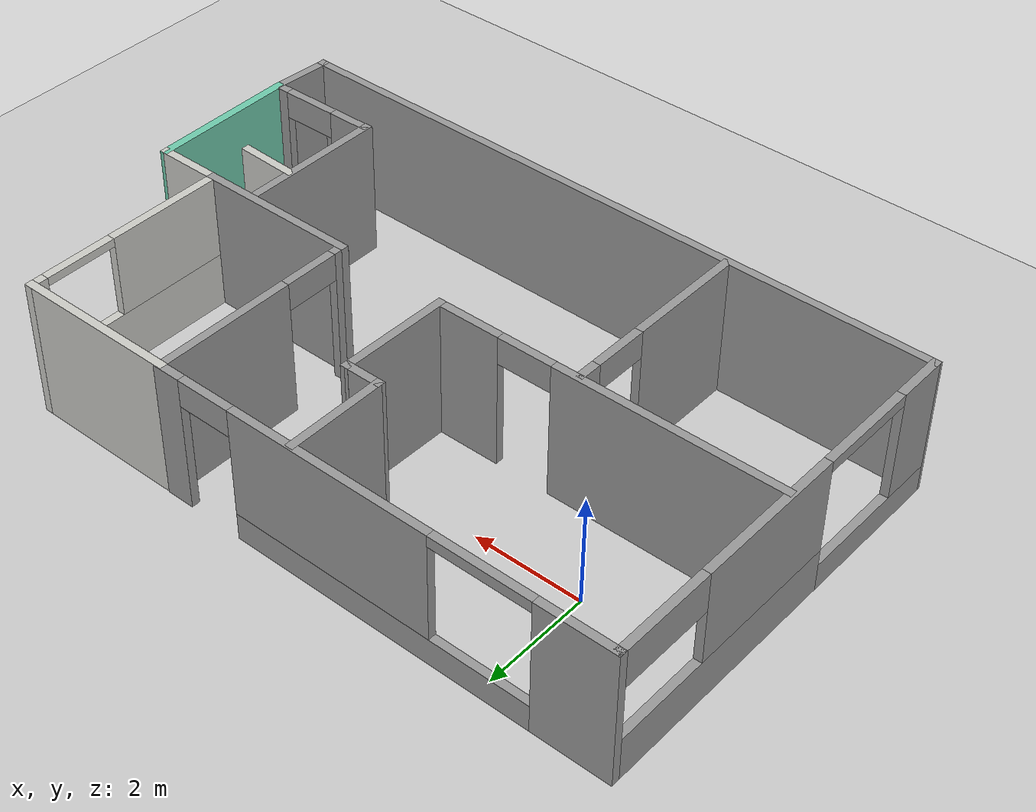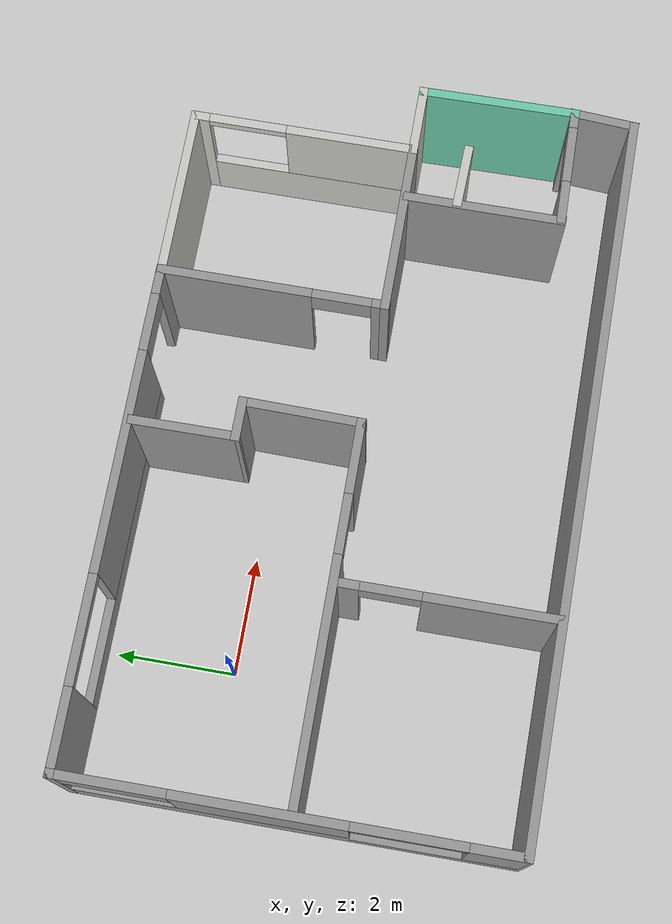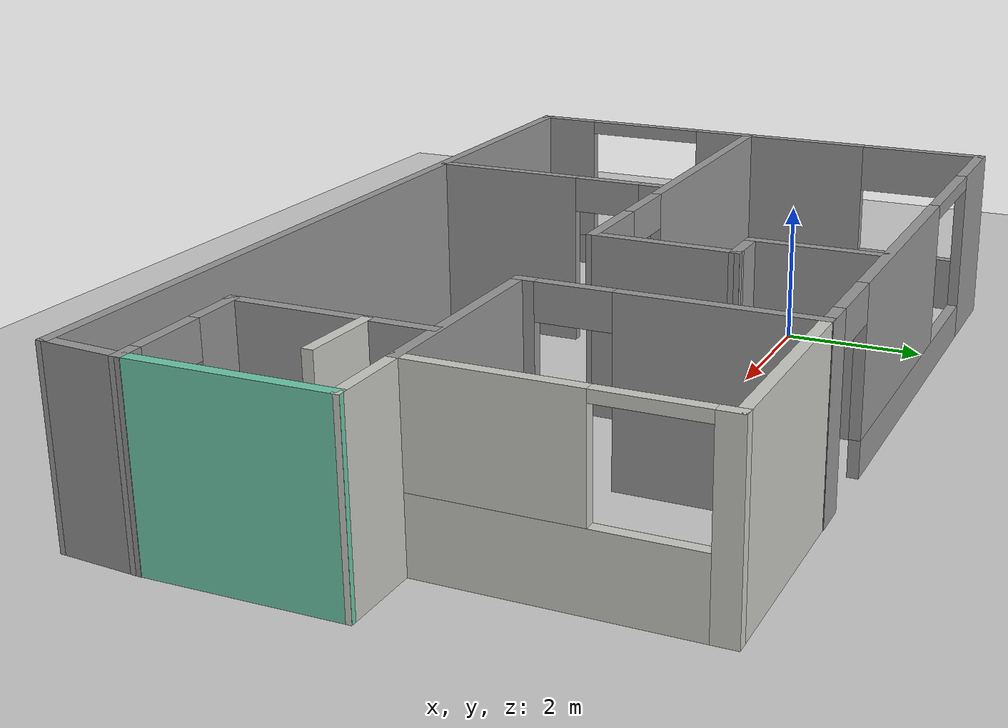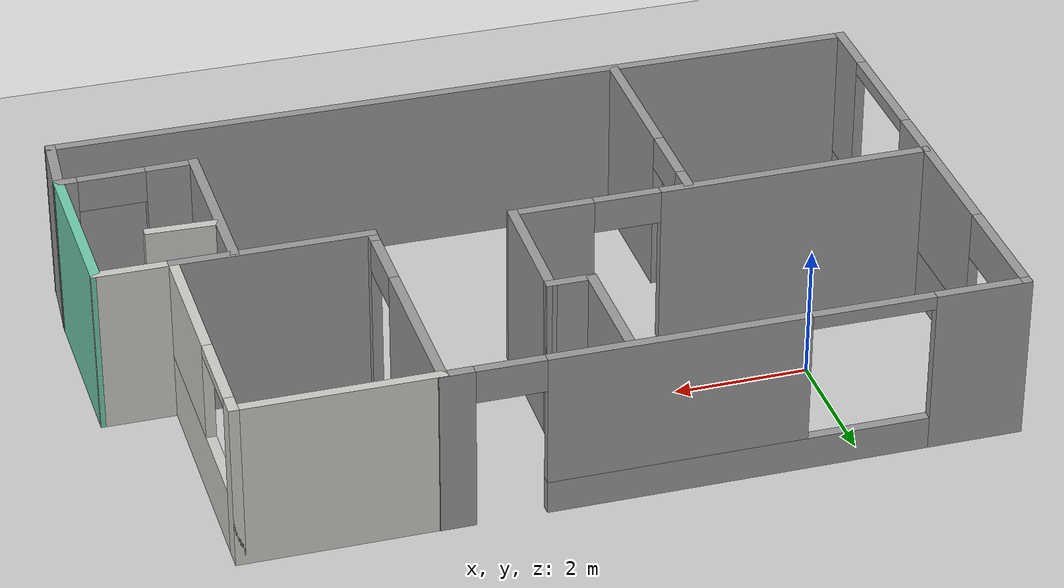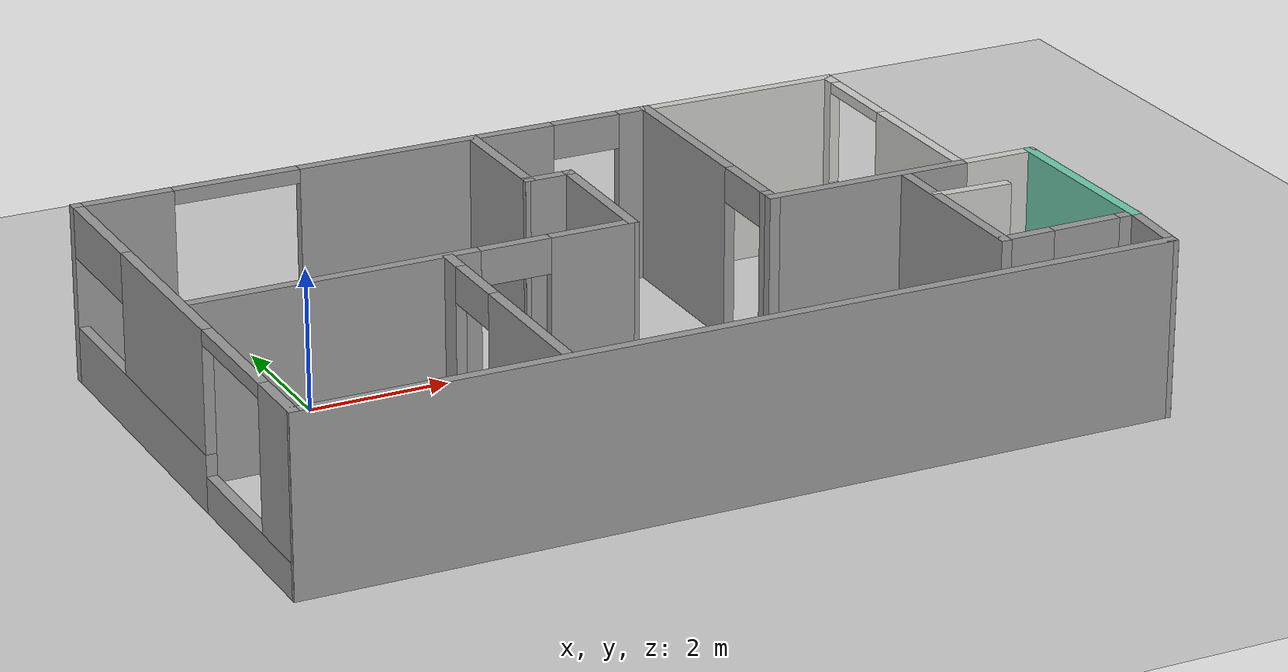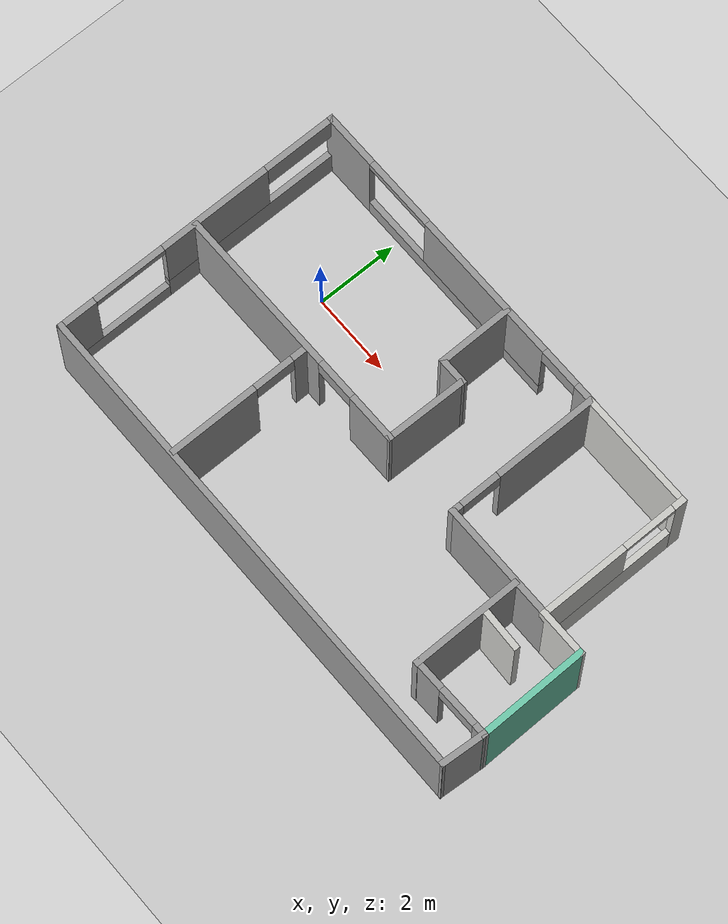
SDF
<sdf version="1.6">
 <world name="default">
  <light name="sun" type="directional">
   <pose>0 0 10 0 -0 0</pose>
   <diffuse>0.8 0.8 0.8 1</diffuse>
   <specular>0.2 0.2 0.2 1</specular>
   <attenuation>
    <range>1000</range>
    <constant>0.9</constant>
    <linear>0.01</linear>
    <quadratic>0.001</quadratic>
   </attenuation>
   <direction>-0.5 0.1 -0.9</direction>
  </light>
  <model name="ground_plane">
   <static>1</static>
   <link name="link">
    <collision name="collision">
     <geometry><plane><normal>0 0 1</normal><size>100 100</size></plane></geometry>
     <surface><friction><ode><mu>100</mu><mu2>50</mu2></ode></friction></surface>
    </collision>
    <visual name="visual">
     <cast_shadows>0</cast_shadows>
     <geometry><plane><normal>0 0 1</normal><size>100 100</size></plane></geometry>
     <material>
      <script><uri>file://media/materials/scripts/gazebo.material</uri><name>Gazebo/Grey</name></script>
     </material>
    </visual>
   </link>
  </model>
  <gravity>0 0 -9.8</gravity>
  <magnetic_field>6e-06 2.3e-05 -4.2e-05</magnetic_field>
  <atmosphere type="adiabatic"/>
  <physics name="default_physics" default="0" type="ode">
   <max_step_size>0.001</max_step_size>
   <real_time_factor>1</real_time_factor>
   <real_time_update_rate>1000</real_time_update_rate>
  </physics>
  <scene><ambient>0.4 0.4 0.4 1</ambient><background>0.7 0.7 0.7 1</background><shadows>1</shadows></scene>
  <spherical_coordinates>
   <surface_model>EARTH_WGS84</surface_model>
   <latitude_deg>0</latitude_deg>
   <longitude_deg>0</longitude_deg>
   <elevation>0</elevation>
   <heading_deg>0</heading_deg>
  </spherical_coordinates>
  <model name="Robot_sim">
   <pose>3.86453 -1.44264 0 0 -0 0</pose>
   <link name="Wall_0">
    <pose>-1.99442 3.68519 0 0 -0 0</pose>
    <visual name="Wall_0_Visual_0">
     <pose>-3.54122 0 1.25 0 -0 0</pose>
     <geometry><box><size>1.41756 0.15 2.5</size></box></geometry>
     <material>
      <script><uri>file://media/materials/scripts/gazebo.material</uri><name>Gazebo/Grey</name></script>
      <ambient>1 1 1 1</ambient>
     </material>
     <meta><layer>0</layer></meta>
    </visual>
    <collision name="Wall_0_Collision_0">
     <geometry><box><size>1.41756 0.15 2.5</size></box></geometry>
     <pose>-3.54122 0 1.25 0 -0 0</pose>
    </collision>
    <visual name="Wall_0_Visual_1">
     <pose>3.99395 0 1.25 0 -0 0</pose>
     <geometry><box><size>0.512111 0.15 2.5</size></box></geometry>
     <material>
      <script><uri>file://media/materials/scripts/gazebo.material</uri><name>Gazebo/Grey</name></script>
      <ambient>1 1 1 1</ambient>
     </material>
     <meta><layer>0</layer></meta>
    </visual>
    <collision name="Wall_0_Collision_1">
     <geometry><box><size>0.512111 0.15 2.5</size></box></geometry>
     <pose>3.99395 0 1.25 0 -0 0</pose>
    </collision>
    <visual name="Wall_0_Visual_2">
     <pose>-0.047276 0 0.25 0 -0 0</pose>
     <geometry><box><size>5.57033 0.15 0.5</size></box></geometry>
     <material>
      <script><uri>file://media/materials/scripts/gazebo.material</uri><name>Gazebo/Grey</name></script>
      <ambient>1 1 1 1</ambient>
     </material>
     <meta><layer>0</layer></meta>
    </visual>
    <collision name="Wall_0_Collision_2">
     <geometry><box><size>5.57033 0.15 0.5</size></box></geometry>
     <pose>-0.047276 0 0.25 0 -0 0</pose>
    </collision>
    <visual name="Wall_0_Visual_3">
     <pose>0.852724 0 1.5 0 -0 0</pose>
     <geometry><box><size>3.77033 0.15 2</size></box></geometry>
     <material>
      <script><uri>file://media/materials/scripts/gazebo.material</uri><name>Gazebo/Grey</name></script>
      <ambient>1 1 1 1</ambient>
     </material>
     <meta><layer>0</layer></meta>
    </visual>
    <collision name="Wall_0_Collision_3">
     <geometry><box><size>3.77033 0.15 2</size></box></geometry>
     <pose>0.852724 0 1.5 0 -0 0</pose>
    </collision>
    <visual name="Wall_0_Visual_4">
     <pose>3.23789 0 2.25 0 -0 0</pose>
     <geometry><box><size>1 0.15 0.5</size></box></geometry>
     <material>
      <script><uri>file://media/materials/scripts/gazebo.material</uri><name>Gazebo/Grey</name></script>
      <ambient>1 1 1 1</ambient>
     </material>
     <meta><layer>0</layer></meta>
    </visual>
    <collision name="Wall_0_Collision_4">
     <geometry><box><size>1 0.15 0.5</size></box></geometry>
     <pose>3.23789 0 2.25 0 -0 0</pose>
    </collision>
    <visual name="Wall_0_Visual_5">
     <pose>-1.93244 0 2.4 0 -0 0</pose>
     <geometry><box><size>1.8 0.15 0.2</size></box></geometry>
     <material>
      <script><uri>file://media/materials/scripts/gazebo.material</uri><name>Gazebo/Grey</name></script>
      <ambient>1 1 1 1</ambient>
     </material>
     <meta><layer>0</layer></meta>
    </visual>
    <collision name="Wall_0_Collision_5">
     <geometry><box><size>1.8 0.15 0.2</size></box></geometry>
     <pose>-1.93244 0 2.4 0 -0 0</pose>
    </collision>
   </link>
   <link name="Wall_11">
    <pose>2.18793 1.8049 0 0 -0 1.5708</pose>
    <visual name="Wall_11_Visual_0">
     <pose>-1.79891 0 1.25 0 -0 0</pose>
     <geometry><box><size>0.295708 0.15 2.5</size></box></geometry>
     <material>
      <script><uri>file://media/materials/scripts/gazebo.material</uri><name>Gazebo/Grey</name></script>
      <ambient>1 1 1 1</ambient>
     </material>
     <meta><layer>0</layer></meta>
    </visual>
    <collision name="Wall_11_Collision_0">
     <geometry><box><size>0.295708 0.15 2.5</size></box></geometry>
     <pose>-1.79891 0 1.25 0 -0 0</pose>
    </collision>
    <visual name="Wall_11_Visual_1">
     <pose>0.647854 0 1.25 0 -0 0</pose>
     <geometry><box><size>2.59782 0.15 2.5</size></box></geometry>
     <material>
      <script><uri>file://media/materials/scripts/gazebo.material</uri><name>Gazebo/Grey</name></script>
      <ambient>1 1 1 1</ambient>
     </material>
     <meta><layer>0</layer></meta>
    </visual>
    <collision name="Wall_11_Collision_1">
     <geometry><box><size>2.59782 0.15 2.5</size></box></geometry>
     <pose>0.647854 0 1.25 0 -0 0</pose>
    </collision>
    <visual name="Wall_11_Visual_2">
     <pose>-1.15106 0 2.25 0 -0 0</pose>
     <geometry><box><size>1 0.15 0.5</size></box></geometry>
     <material>
      <script><uri>file://media/materials/scripts/gazebo.material</uri><name>Gazebo/Grey</name></script>
      <ambient>1 1 1 1</ambient>
     </material>
     <meta><layer>0</layer></meta>
    </visual>
    <collision name="Wall_11_Collision_2">
     <geometry><box><size>1 0.15 0.5</size></box></geometry>
     <pose>-1.15106 0 2.25 0 -0 0</pose>
    </collision>
   </link>
   <link name="Wall_13">
    <collision name="Wall_13_Collision">
     <geometry><box><size>3 0.15 2.5</size></box></geometry>
     <pose>0 0 1.25 0 -0 0</pose>
    </collision>
    <visual name="Wall_13_Visual">
     <pose>0 0 1.25 0 -0 0</pose>
     <geometry><box><size>3 0.15 2.5</size></box></geometry>
     <material>
      <script><uri>file://media/materials/scripts/gazebo.material</uri><name>Gazebo/CeilingTiled</name></script>
      <ambient>1 1 1 1</ambient>
     </material>
     <meta><layer>0</layer></meta>
    </visual>
    <pose>3.61293 3.67634 0 0 -0 0</pose>
   </link>
   <link name="Wall_15">
    <pose>5.03793 1.87634 0 0 -0 -1.5708</pose>
    <visual name="Wall_15_Visual_0">
     <pose>-1.71276 0 1.25 0 -0 0</pose>
     <geometry><box><size>0.324483 0.15 2.5</size></box></geometry>
     <material>
      <script><uri>file://media/materials/scripts/gazebo.material</uri><name>Gazebo/CeilingTiled</name></script>
      <ambient>1 1 1 1</ambient>
     </material>
     <meta><layer>0</layer></meta>
    </visual>
    <collision name="Wall_15_Collision_0">
     <geometry><box><size>0.324483 0.15 2.5</size></box></geometry>
     <pose>-1.71276 0 1.25 0 -0 0</pose>
    </collision>
    <visual name="Wall_15_Visual_1">
     <pose>0.162242 0 0.5 0 -0 0</pose>
     <geometry><box><size>3.42552 0.15 1</size></box></geometry>
     <material>
      <script><uri>file://media/materials/scripts/gazebo.material</uri><name>Gazebo/CeilingTiled</name></script>
      <ambient>1 1 1 1</ambient>
     </material>
     <meta><layer>0</layer></meta>
    </visual>
    <collision name="Wall_15_Collision_1">
     <geometry><box><size>3.42552 0.15 1</size></box></geometry>
     <pose>0.162242 0 0.5 0 -0 0</pose>
    </collision>
    <visual name="Wall_15_Visual_2">
     <pose>0.822242 0 1.75 0 -0 0</pose>
     <geometry><box><size>2.10552 0.15 1.5</size></box></geometry>
     <material>
      <script><uri>file://media/materials/scripts/gazebo.material</uri><name>Gazebo/CeilingTiled</name></script>
      <ambient>1 1 1 1</ambient>
     </material>
     <meta><layer>0</layer></meta>
    </visual>
    <collision name="Wall_15_Collision_2">
     <geometry><box><size>2.10552 0.15 1.5</size></box></geometry>
     <pose>0.822242 0 1.75 0 -0 0</pose>
    </collision>
    <visual name="Wall_15_Visual_3">
     <pose>-0.890517 0 2.425 0 -0 0</pose>
     <geometry><box><size>1.32 0.15 0.15</size></box></geometry>
     <material>
      <script><uri>file://media/materials/scripts/gazebo.material</uri><name>Gazebo/CeilingTiled</name></script>
      <ambient>1 1 1 1</ambient>
     </material>
     <meta><layer>0</layer></meta>
    </visual>
    <collision name="Wall_15_Collision_3">
     <geometry><box><size>1.32 0.15 0.15</size></box></geometry>
     <pose>-0.890517 0 2.425 0 -0 0</pose>
    </collision>
   </link>
   <link name="Wall_17">
    <collision name="Wall_17_Collision">
     <geometry><box><size>3 0.15 2.5</size></box></geometry>
     <pose>0 0 1.25 0 -0 0</pose>
    </collision>
    <visual name="Wall_17_Visual">
     <pose>0 0 1.25 0 -0 0</pose>
     <geometry><box><size>3 0.15 2.5</size></box></geometry>
     <material>
      <script><uri>file://media/materials/scripts/gazebo.material</uri><name>Gazebo/Grey</name></script>
      <ambient>1 1 1 1</ambient>
     </material>
     <meta><layer>0</layer></meta>
    </visual>
    <pose>3.61293 -0.066535 0 0 -0 0</pose>
   </link>
   <link name="Wall_2">
    <pose>-6.16943 0.010107 0 0 -0 -1.5708</pose>
    <visual name="Wall_2_Visual_0">
     <pose>-3.67664 0 1.25 0 -0 0</pose>
     <geometry><box><size>0.146719 0.15 2.5</size></box></geometry>
     <material>
      <script><uri>file://media/materials/scripts/gazebo.material</uri><name>Gazebo/Grey</name></script>
      <ambient>1 1 1 1</ambient>
     </material>
     <meta><layer>0</layer></meta>
    </visual>
    <collision name="Wall_2_Collision_0">
     <geometry><box><size>0.146719 0.15 2.5</size></box></geometry>
     <pose>-3.67664 0 1.25 0 -0 0</pose>
    </collision>
    <visual name="Wall_2_Visual_1">
     <pose>-1.32946 0 0.4 0 -0 0</pose>
     <geometry><box><size>4.54765 0.15 0.8</size></box></geometry>
     <material>
      <script><uri>file://media/materials/scripts/gazebo.material</uri><name>Gazebo/Grey</name></script>
      <ambient>1 1 1 1</ambient>
     </material>
     <meta><layer>0</layer></meta>
    </visual>
    <collision name="Wall_2_Collision_1">
     <geometry><box><size>4.54765 0.15 0.8</size></box></geometry>
     <pose>-1.32946 0 0.4 0 -0 0</pose>
    </collision>
    <visual name="Wall_2_Visual_2">
     <pose>2.34718 0 0.25 0 -0 0</pose>
     <geometry><box><size>2.80564 0.15 0.5</size></box></geometry>
     <material>
      <script><uri>file://media/materials/scripts/gazebo.material</uri><name>Gazebo/Grey</name></script>
      <ambient>1 1 1 1</ambient>
     </material>
     <meta><layer>0</layer></meta>
    </visual>
    <collision name="Wall_2_Collision_2">
     <geometry><box><size>2.80564 0.15 0.5</size></box></geometry>
     <pose>2.34718 0 0.25 0 -0 0</pose>
    </collision>
    <visual name="Wall_2_Visual_3">
     <pose>3.26418 0 1.5 0 -0 0</pose>
     <geometry><box><size>0.971636 0.15 2</size></box></geometry>
     <material>
      <script><uri>file://media/materials/scripts/gazebo.material</uri><name>Gazebo/Grey</name></script>
      <ambient>1 1 1 1</ambient>
     </material>
     <meta><layer>0</layer></meta>
    </visual>
    <collision name="Wall_2_Collision_3">
     <geometry><box><size>0.971636 0.15 2</size></box></geometry>
     <pose>3.26418 0 1.5 0 -0 0</pose>
    </collision>
    <visual name="Wall_2_Visual_4">
     <pose>-0.457958 0 1.65 0 -0 0</pose>
     <geometry><box><size>2.80464 0.15 1.7</size></box></geometry>
     <material>
      <script><uri>file://media/materials/scripts/gazebo.material</uri><name>Gazebo/Grey</name></script>
      <ambient>1 1 1 1</ambient>
     </material>
     <meta><layer>0</layer></meta>
    </visual>
    <collision name="Wall_2_Collision_4">
     <geometry><box><size>2.80464 0.15 1.7</size></box></geometry>
     <pose>-0.457958 0 1.65 0 -0 0</pose>
    </collision>
    <visual name="Wall_2_Visual_5">
     <pose>-2.73178 0 2.15 0 -0 0</pose>
     <geometry><box><size>1.743 0.15 0.7</size></box></geometry>
     <material>
      <script><uri>file://media/materials/scripts/gazebo.material</uri><name>Gazebo/Grey</name></script>
      <ambient>1 1 1 1</ambient>
     </material>
     <meta><layer>0</layer></meta>
    </visual>
    <collision name="Wall_2_Collision_5">
     <geometry><box><size>1.743 0.15 0.7</size></box></geometry>
     <pose>-2.73178 0 2.15 0 -0 0</pose>
    </collision>
    <visual name="Wall_2_Visual_6">
     <pose>1.86136 0 2.4 0 -0 0</pose>
     <geometry><box><size>1.834 0.15 0.2</size></box></geometry>
     <material>
      <script><uri>file://media/materials/scripts/gazebo.material</uri><name>Gazebo/Grey</name></script>
      <ambient>1 1 1 1</ambient>
     </material>
     <meta><layer>0</layer></meta>
    </visual>
    <collision name="Wall_2_Collision_6">
     <geometry><box><size>1.834 0.15 0.2</size></box></geometry>
     <pose>1.86136 0 2.4 0 -0 0</pose>
    </collision>
   </link>
   <link name="Wall_20">
    <collision name="Wall_20_Collision">
     <geometry><box><size>1.25 0.15 2.5</size></box></geometry>
     <pose>0 0 1.25 0 -0 0</pose>
    </collision>
    <visual name="Wall_20_Visual">
     <pose>0 0 1.25 0 -0 0</pose>
     <geometry><box><size>1.25 0.15 2.5</size></box></geometry>
     <material>
      <script><uri>file://media/materials/scripts/gazebo.material</uri><name>Gazebo/CeilingTiled</name></script>
      <ambient>0.435294 0.796078 0.67451 1</ambient>
     </material>
     <meta><layer>0</layer></meta>
    </visual>
    <pose>5.58793 -0.066535 0 0 -0 0</pose>
   </link>
   <link name="Wall_22">
    <collision name="Wall_22_Collision">
     <geometry><box><size>2.75 0.15 2.5</size></box></geometry>
     <pose>0 0 1.25 0 -0 0</pose>
    </collision>
    <visual name="Wall_22_Visual">
     <pose>0 0 1.25 0 -0 0</pose>
     <geometry><box><size>2.75 0.15 2.5</size></box></geometry>
     <material>
      <script><uri>file://media/materials/scripts/gazebo.material</uri><name>Gazebo/Grey</name></script>
      <ambient>1 1 1 1</ambient>
     </material>
     <meta><layer>0</layer></meta>
    </visual>
    <pose>4.17063 -1.41247 0 0 -0 -1.5708</pose>
   </link>
   <link name="Wall_24">
    <collision name="Wall_24_Collision">
     <geometry><box><size>1.13007 0.15 2.5</size></box></geometry>
     <pose>0 0 1.25 0 -0 0</pose>
    </collision>
    <visual name="Wall_24_Visual">
     <pose>0 0 1.25 0 -0 0</pose>
     <geometry><box><size>1.13007 0.15 2.5</size></box></geometry>
     <material>
      <script><uri>file://media/materials/scripts/gazebo.material</uri><name>Gazebo/CeilingTiled</name></script>
      <ambient>0.435294 0.796078 0.67451 1</ambient>
     </material>
     <meta><layer>0</layer></meta>
    </visual>
    <pose>4.69534 -0.969479 0 0 -0 -0.035699</pose>
   </link>
   <link name="Wall_28">
    <pose>5.18189 -2.6835 0 0 -0 -3.12379</pose>
    <visual name="Wall_28_Visual_0">
     <pose>-0.88679 0 1.25 0 -0 0</pose>
     <geometry><box><size>0.341951 0.15 2.5</size></box></geometry>
     <material>
      <script><uri>file://media/materials/scripts/gazebo.material</uri><name>Gazebo/Grey</name></script>
      <ambient>1 1 1 1</ambient>
     </material>
     <meta><layer>0</layer></meta>
    </visual>
    <collision name="Wall_28_Collision_0">
     <geometry><box><size>0.341951 0.15 2.5</size></box></geometry>
     <pose>-0.88679 0 1.25 0 -0 0</pose>
    </collision>
    <visual name="Wall_28_Visual_1">
     <pose>0.670975 0 1.25 0 -0 0</pose>
     <geometry><box><size>0.773579 0.15 2.5</size></box></geometry>
     <material>
      <script><uri>file://media/materials/scripts/gazebo.material</uri><name>Gazebo/Grey</name></script>
      <ambient>1 1 1 1</ambient>
     </material>
     <meta><layer>0</layer></meta>
    </visual>
    <collision name="Wall_28_Collision_1">
     <geometry><box><size>0.773579 0.15 2.5</size></box></geometry>
     <pose>0.670975 0 1.25 0 -0 0</pose>
    </collision>
    <visual name="Wall_28_Visual_2">
     <pose>-0.215814 0 2.25 0 -0 0</pose>
     <geometry><box><size>1 0.15 0.5</size></box></geometry>
     <material>
      <script><uri>file://media/materials/scripts/gazebo.material</uri><name>Gazebo/Grey</name></script>
      <ambient>1 1 1 1</ambient>
     </material>
     <meta><layer>0</layer></meta>
    </visual>
    <collision name="Wall_28_Collision_2">
     <geometry><box><size>1 0.15 0.5</size></box></geometry>
     <pose>-0.215814 0 2.25 0 -0 0</pose>
    </collision>
   </link>
   <link name="Wall_30">
    <collision name="Wall_30_Collision">
     <geometry><box><size>2.74961 0.15 2.5</size></box></geometry>
     <pose>0 0 1.25 0 -0 0</pose>
    </collision>
    <visual name="Wall_30_Visual">
     <pose>0 0 1.25 0 -0 0</pose>
     <geometry><box><size>2.74961 0.15 2.5</size></box></geometry>
     <material>
      <script><uri>file://media/materials/scripts/gazebo.material</uri><name>Gazebo/Grey</name></script>
      <ambient>0.435294 0.796078 0.67451 1</ambient>
     </material>
     <meta><layer>0</layer></meta>
    </visual>
    <pose>6.15121 -1.36627 0 0 -0 -1.56057</pose>
   </link>
   <link name="Wall_32">
    <pose>-2.51057 -1.86147 0 0 -0 -1.5708</pose>
    <visual name="Wall_32_Visual_0">
     <pose>-1.61646 0 1.25 0 -0 0</pose>
     <geometry><box><size>0.41509 0.15 2.5</size></box></geometry>
     <material>
      <script><uri>file://media/materials/scripts/gazebo.material</uri><name>Gazebo/Grey</name></script>
      <ambient>1 1 1 1</ambient>
     </material>
     <meta><layer>0</layer></meta>
    </visual>
    <collision name="Wall_32_Collision_0">
     <geometry><box><size>0.41509 0.15 2.5</size></box></geometry>
     <pose>-1.61646 0 1.25 0 -0 0</pose>
    </collision>
    <visual name="Wall_32_Visual_1">
     <pose>0.707545 0 1.25 0 -0 0</pose>
     <geometry><box><size>2.23292 0.15 2.5</size></box></geometry>
     <material>
      <script><uri>file://media/materials/scripts/gazebo.material</uri><name>Gazebo/Grey</name></script>
      <ambient>1 1 1 1</ambient>
     </material>
     <meta><layer>0</layer></meta>
    </visual>
    <collision name="Wall_32_Collision_1">
     <geometry><box><size>2.23292 0.15 2.5</size></box></geometry>
     <pose>0.707545 0 1.25 0 -0 0</pose>
    </collision>
    <visual name="Wall_32_Visual_2">
     <pose>-0.908916 0 2.25 0 -0 0</pose>
     <geometry><box><size>1 0.15 0.5</size></box></geometry>
     <material>
      <script><uri>file://media/materials/scripts/gazebo.material</uri><name>Gazebo/Grey</name></script>
      <ambient>1 1 1 1</ambient>
     </material>
     <meta><layer>0</layer></meta>
    </visual>
    <collision name="Wall_32_Collision_2">
     <geometry><box><size>1 0.15 0.5</size></box></geometry>
     <pose>-0.908916 0 2.25 0 -0 0</pose>
    </collision>
   </link>
   <link name="Wall_34">
    <collision name="Wall_34_Collision">
     <geometry><box><size>12.414 0.15 2.5</size></box></geometry>
     <pose>0 0 1.25 0 -0 0</pose>
    </collision>
    <visual name="Wall_34_Visual">
     <pose>0 0 1.25 0 -0 0</pose>
     <geometry><box><size>12.414 0.15 2.5</size></box></geometry>
     <material>
      <script><uri>file://media/materials/scripts/gazebo.material</uri><name>Gazebo/Grey</name></script>
      <ambient>1 1 1 1</ambient>
     </material>
     <meta><layer>0</layer></meta>
    </visual>
    <pose>-0.037425 -3.67248 0 0 -0 -0.001223</pose>
   </link>
   <link name="Wall_36">
    <collision name="Wall_36_Collision">
     <geometry><box><size>1.16683 0.15 2.5</size></box></geometry>
     <pose>0 0 1.25 0 -0 0</pose>
    </collision>
    <visual name="Wall_36_Visual">
     <pose>0 0 1.25 0 -0 0</pose>
     <geometry><box><size>1.16683 0.15 2.5</size></box></geometry>
     <material>
      <script><uri>file://media/materials/scripts/gazebo.material</uri><name>Gazebo/Grey</name></script>
      <ambient>1 1 1 1</ambient>
     </material>
     <meta><layer>0</layer></meta>
    </visual>
    <pose>6.12954 -3.17299 0 0 -0 -1.63965</pose>
   </link>
   <link name="Wall_4">
    <pose>-2.99858 -0.041292 0 0 -0 -3.13673</pose>
    <visual name="Wall_4_Visual_0">
     <pose>-2.56676 0 1.25 0 -0 0</pose>
     <geometry><box><size>1.26863 0.15 2.5</size></box></geometry>
     <material>
      <script><uri>file://media/materials/scripts/gazebo.material</uri><name>Gazebo/Grey</name></script>
      <ambient>1 1 1 1</ambient>
     </material>
     <meta><layer>0</layer></meta>
    </visual>
    <collision name="Wall_4_Collision_0">
     <geometry><box><size>1.26863 0.15 2.5</size></box></geometry>
     <pose>-2.56676 0 1.25 0 -0 0</pose>
    </collision>
    <visual name="Wall_4_Visual_1">
     <pose>1.13432 0 1.25 0 -0 0</pose>
     <geometry><box><size>4.13353 0.15 2.5</size></box></geometry>
     <material>
      <script><uri>file://media/materials/scripts/gazebo.material</uri><name>Gazebo/Grey</name></script>
      <ambient>1 1 1 1</ambient>
     </material>
     <meta><layer>0</layer></meta>
    </visual>
    <collision name="Wall_4_Collision_1">
     <geometry><box><size>4.13353 0.15 2.5</size></box></geometry>
     <pose>1.13432 0 1.25 0 -0 0</pose>
    </collision>
    <visual name="Wall_4_Visual_2">
     <pose>-1.43245 0 2.25 0 -0 0</pose>
     <geometry><box><size>1 0.15 0.5</size></box></geometry>
     <material>
      <script><uri>file://media/materials/scripts/gazebo.material</uri><name>Gazebo/Grey</name></script>
      <ambient>1 1 1 1</ambient>
     </material>
     <meta><layer>0</layer></meta>
    </visual>
    <collision name="Wall_4_Collision_2">
     <geometry><box><size>1 0.15 0.5</size></box></geometry>
     <pose>-1.43245 0 2.25 0 -0 0</pose>
    </collision>
   </link>
   <link name="Wall_6">
    <collision name="Wall_6_Collision">
     <geometry><box><size>2.09672 0.15 2.5</size></box></geometry>
     <pose>0 0 1.25 0 -0 0</pose>
    </collision>
    <visual name="Wall_6_Visual">
     <pose>0 0 1.25 0 -0 0</pose>
     <geometry><box><size>2.09672 0.15 2.5</size></box></geometry>
     <material>
      <script><uri>file://media/materials/scripts/gazebo.material</uri><name>Gazebo/Grey</name></script>
      <ambient>1 1 1 1</ambient>
     </material>
     <meta><layer>0</layer></meta>
    </visual>
    <pose>0.142676 0.947277 0 0 -0 1.55517</pose>
   </link>
   <link name="Wall_8">
    <collision name="Wall_8_Collision">
     <geometry><box><size>0.75 0.15 2.5</size></box></geometry>
     <pose>0 0 1.25 0 -0 0</pose>
    </collision>
    <visual name="Wall_8_Visual">
     <pose>0 0 1.25 0 -0 0</pose>
     <geometry><box><size>0.75 0.15 2.5</size></box></geometry>
     <material>
      <script><uri>file://media/materials/scripts/gazebo.material</uri><name>Gazebo/Grey</name></script>
      <ambient>1 1 1 1</ambient>
     </material>
     <meta><layer>0</layer></meta>
    </visual>
    <pose>-0.142115 1.92064 0 0 -0 3.14159</pose>
   </link>
   <link name="Wall_9">
    <collision name="Wall_9_Collision">
     <geometry><box><size>1.88382 0.15 2.5</size></box></geometry>
     <pose>0 0 1.25 0 -0 0</pose>
    </collision>
    <visual name="Wall_9_Visual">
     <pose>0 0 1.25 0 -0 0</pose>
     <geometry><box><size>1.88382 0.15 2.5</size></box></geometry>
     <material>
      <script><uri>file://media/materials/scripts/gazebo.material</uri><name>Gazebo/Grey</name></script>
      <ambient>1 1 1 1</ambient>
     </material>
     <meta><layer>0</layer></meta>
    </visual>
    <pose>-0.44629 2.78754 0 0 -0 1.57561</pose>
   </link>
   <static>1</static>
  </model>
 </world>
</sdf>
